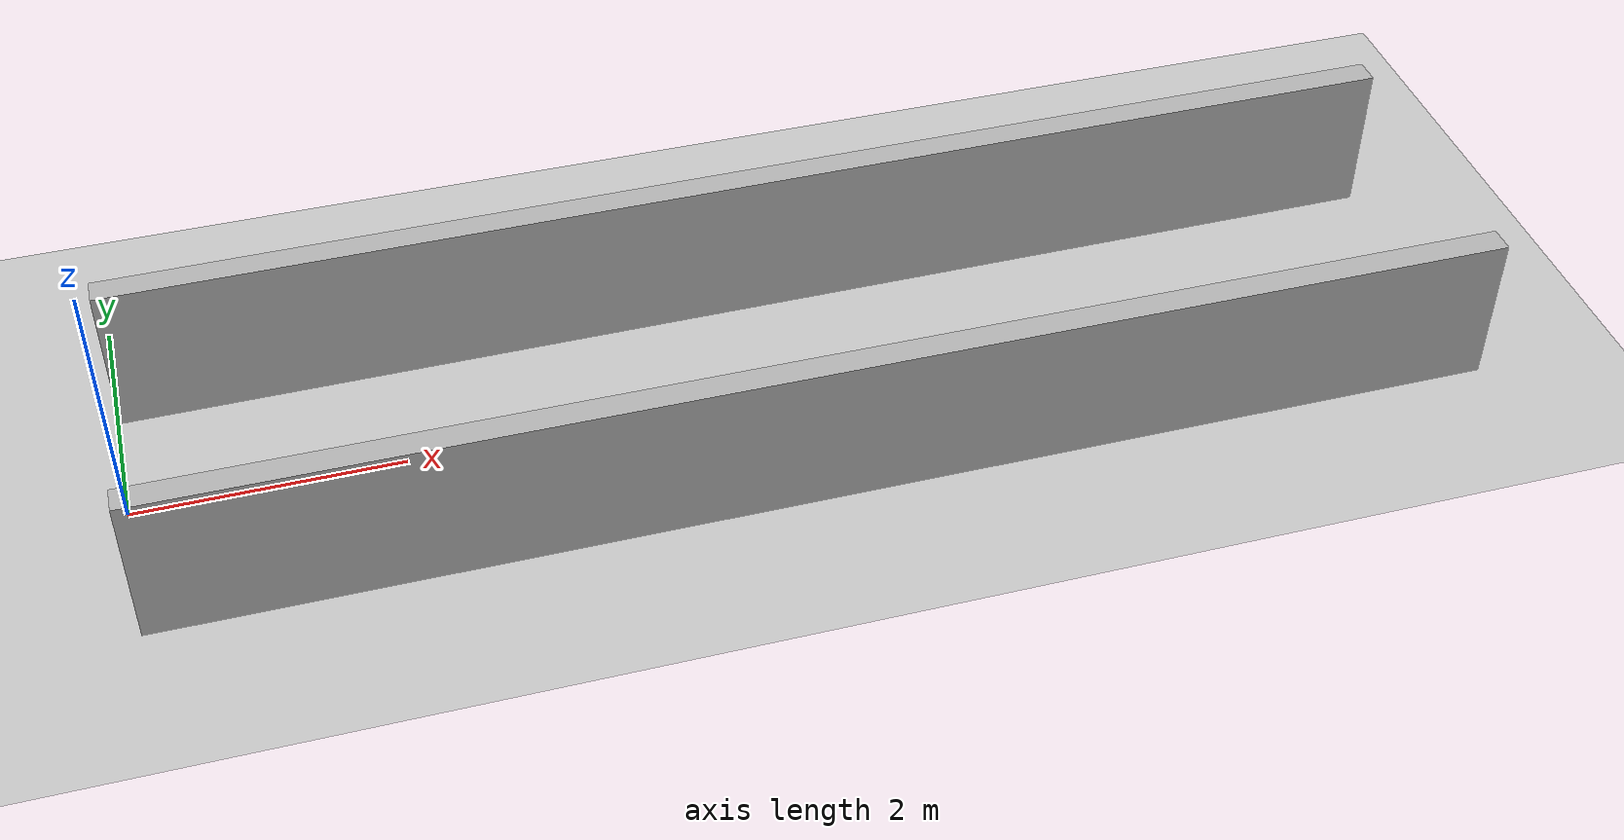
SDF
<?xml version="1.0"?>
<sdf version="1.6">
  <world name="v2-04g-r1-corridor-s4932">
    <gravity>0 0 -9.81</gravity>
    <physics name="v2_deterministic" type="ode">
      <max_step_size>0.002</max_step_size>
      <real_time_update_rate>500</real_time_update_rate>
    </physics>
    <include>
      <uri>model://sun</uri>
    </include>
    <include>
      <uri>model://ground_plane</uri>
    </include>
    <model name="corridor-left">
      <static>true</static>
      <pose>5.006274573 1.089844903 0.600000000 0 0 0.003236306</pose>
      <link name="link">
        <collision name="collision">
          <geometry>
            <box>
              <size>10.000000 0.200000 1.200000</size>
            </box>
          </geometry>
        </collision>
        <visual name="visual">
          <geometry>
            <box>
              <size>10.000000 0.200000 1.200000</size>
            </box>
          </geometry>
        </visual>
      </link>
    </model>
    <model name="corridor-right">
      <static>true</static>
      <pose>5.000952228 -1.103145253 0.600000000 0 0 -0.001551501</pose>
      <link name="link">
        <collision name="collision">
          <geometry>
            <box>
              <size>10.000000 0.200000 1.200000</size>
            </box>
          </geometry>
        </collision>
        <visual name="visual">
          <geometry>
            <box>
              <size>10.000000 0.200000 1.200000</size>
            </box>
          </geometry>
        </visual>
      </link>
    </model>
  </world>
</sdf>
